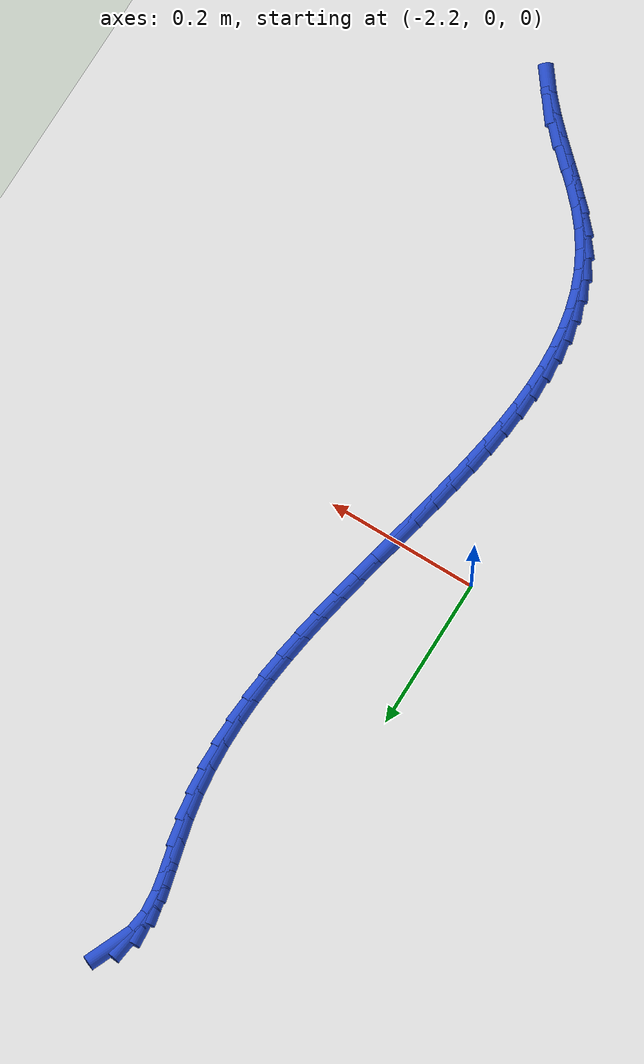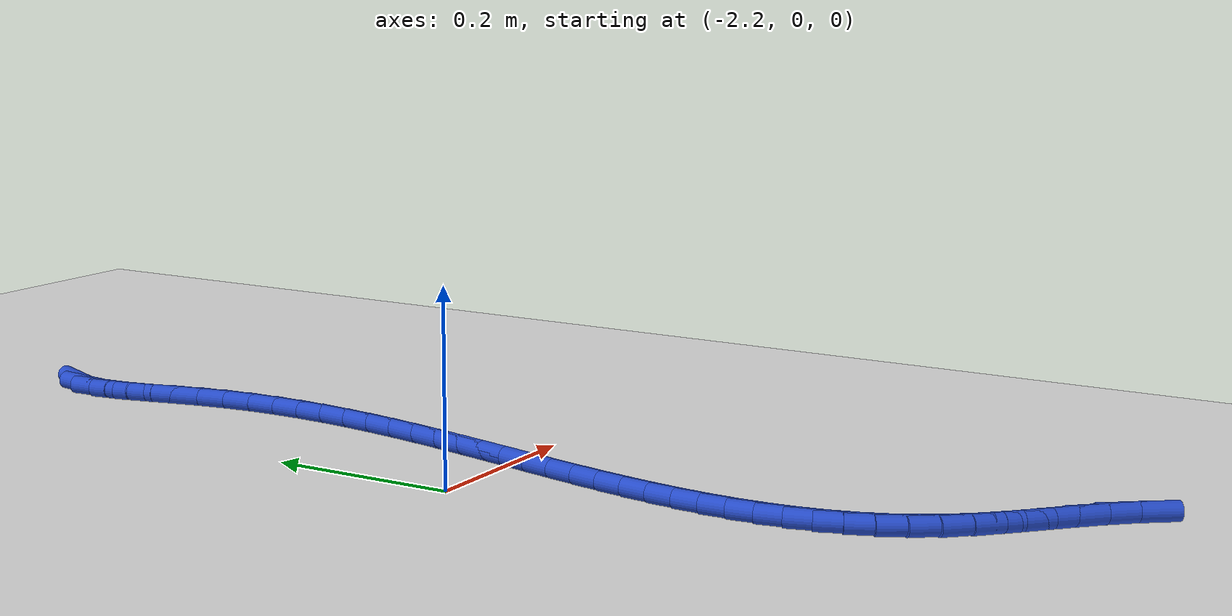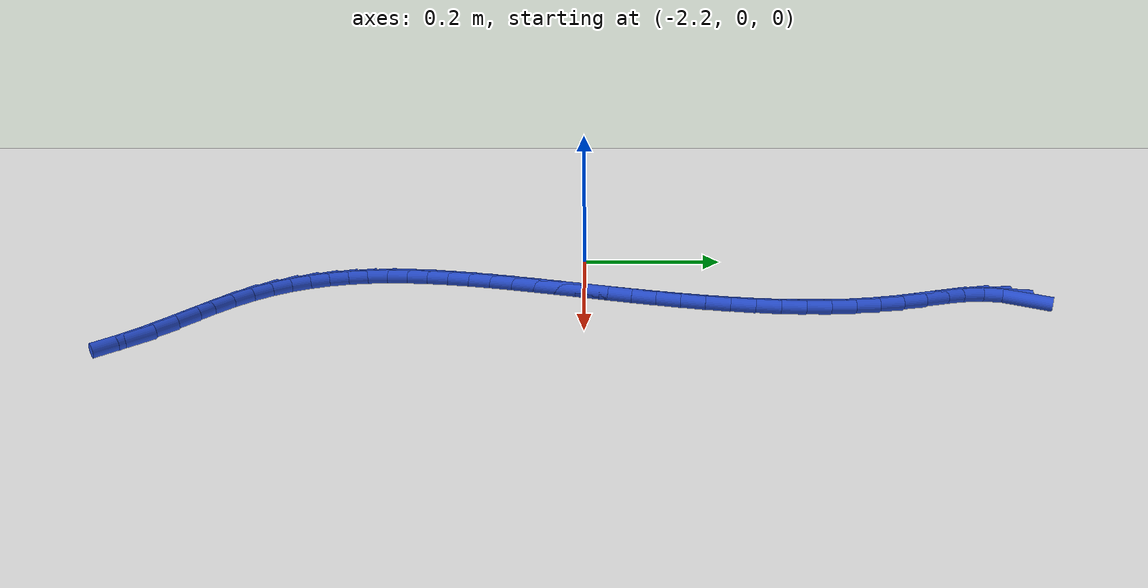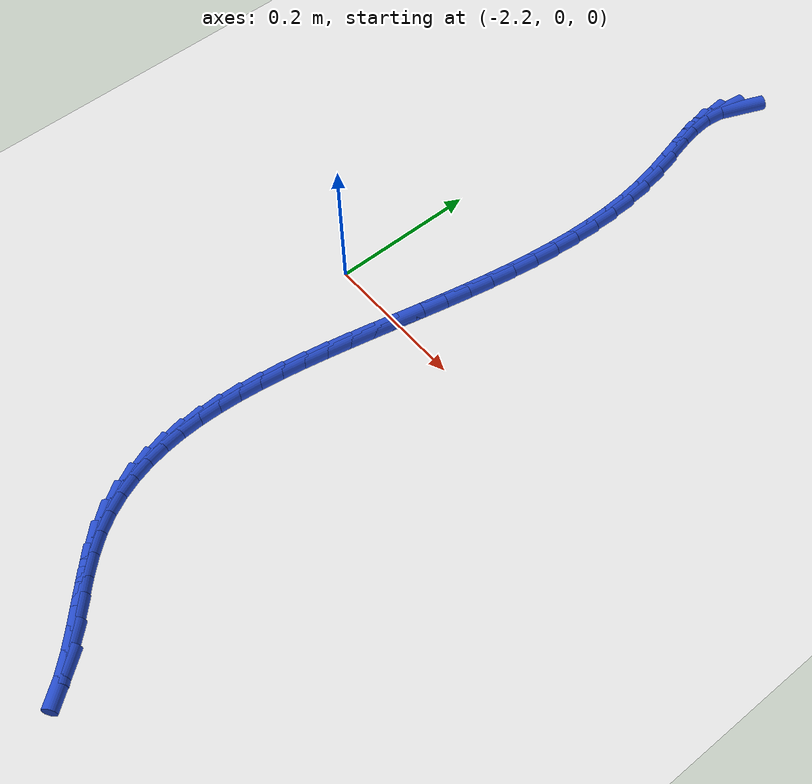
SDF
<sdf version="1.6">
 <world name="default">
  <model name="ground_plane">
   <static>1</static>
   <link name="link">
    <collision name="collision">
     <geometry><plane><normal>0 0 1</normal><size>100 100</size></plane></geometry>
     <surface><friction><ode><mu>100</mu><mu2>50</mu2></ode></friction></surface>
    </collision>
    <visual name="visual">
     <cast_shadows>0</cast_shadows>
     <geometry><plane><normal>0 0 1</normal><size>100 100</size></plane></geometry>
     <material>
      <script><uri>file://media/materials/scripts/gazebo.material</uri><name>Gazebo/WhiteGlow</name></script>
     </material>
    </visual>
   </link>
  </model>
  <model name="line">
   <link name="link_105">
    <pose>-2.0668392714114527 0.6042175349338211 0.01 0 1.57 1.1620151764280284</pose>
    <collision name="collision">
     <geometry><cylinder><radius>0.01</radius><length>0.08</length></cylinder></geometry>
    </collision>
    <visual name="visual">
     <material>
      <script><name>Gazebo/Blue</name><uri>file://media/materials/scripts/gazebo.material</uri></script>
     </material>
     <geometry><cylinder><radius>0.01</radius><length>0.08</length></cylinder></geometry>
    </visual>
   </link>
   <link name="link_106">
    <pose>-2.077239951345704 0.5802076293709276 0.01 0 1.57 1.4441414119854377</pose>
    <collision name="collision">
     <geometry><cylinder><radius>0.01</radius><length>0.08</length></cylinder></geometry>
    </collision>
    <visual name="visual">
     <material>
      <script><name>Gazebo/Blue</name><uri>file://media/materials/scripts/gazebo.material</uri></script>
     </material>
     <geometry><cylinder><radius>0.01</radius><length>0.08</length></cylinder></geometry>
    </visual>
   </link>
   <link name="link_107">
    <pose>-2.080628480789514 0.5535968101438071 0.01 0 1.57 -1.491434207393635</pose>
    <collision name="collision">
     <geometry><cylinder><radius>0.01</radius><length>0.08</length></cylinder></geometry>
    </collision>
    <visual name="visual">
     <material>
      <script><name>Gazebo/Blue</name><uri>file://media/materials/scripts/gazebo.material</uri></script>
     </material>
     <geometry><cylinder><radius>0.01</radius><length>0.08</length></cylinder></geometry>
    </visual>
   </link>
   <link name="link_108">
    <pose>-2.0783295768554817 0.5246903810721223 0.01 0 1.57 -1.376431582109848</pose>
    <collision name="collision">
     <geometry><cylinder><radius>0.01</radius><length>0.08</length></cylinder></geometry>
    </collision>
    <visual name="visual">
     <material>
      <script><name>Gazebo/Blue</name><uri>file://media/materials/scripts/gazebo.material</uri></script>
     </material>
     <geometry><cylinder><radius>0.01</radius><length>0.08</length></cylinder></geometry>
    </visual>
   </link>
   <link name="link_109">
    <pose>-2.0722865321586013 0.49399162954735965 0.01 0 1.57 -1.3303281371025912</pose>
    <collision name="collision">
     <geometry><cylinder><radius>0.01</radius><length>0.08</length></cylinder></geometry>
    </collision>
    <visual name="visual">
     <material>
      <script><name>Gazebo/Blue</name><uri>file://media/materials/scripts/gazebo.material</uri></script>
     </material>
     <geometry><cylinder><radius>0.01</radius><length>0.08</length></cylinder></geometry>
    </visual>
   </link>
   <link name="link_110">
    <pose>-2.0644427175918456 0.4620038680149462 0.01 0 1.57 -1.3400002510667648</pose>
    <collision name="collision">
     <geometry><cylinder><radius>0.01</radius><length>0.08</length></cylinder></geometry>
    </collision>
    <visual name="visual">
     <material>
      <script><name>Gazebo/Blue</name><uri>file://media/materials/scripts/gazebo.material</uri></script>
     </material>
     <geometry><cylinder><radius>0.01</radius><length>0.08</length></cylinder></geometry>
    </visual>
   </link>
   <link name="link_111">
    <pose>-2.0567415040481856 0.4292304089203086 0.01 0 1.57 -1.3951224198451924</pose>
    <collision name="collision">
     <geometry><cylinder><radius>0.01</radius><length>0.08</length></cylinder></geometry>
    </collision>
    <visual name="visual">
     <material>
      <script><name>Gazebo/Blue</name><uri>file://media/materials/scripts/gazebo.material</uri></script>
     </material>
     <geometry><cylinder><radius>0.01</radius><length>0.08</length></cylinder></geometry>
    </visual>
   </link>
   <link name="link_112">
    <pose>-2.050863826719448 0.39611741925838095 0.01 0 1.57 -1.4580711752834097</pose>
    <collision name="collision">
     <geometry><cylinder><radius>0.01</radius><length>0.08</length></cylinder></geometry>
    </collision>
    <visual name="visual">
     <material>
      <script><name>Gazebo/Blue</name><uri>file://media/materials/scripts/gazebo.material</uri></script>
     </material>
     <geometry><cylinder><radius>0.01</radius><length>0.08</length></cylinder></geometry>
    </visual>
   </link>
   <link name="link_113">
    <pose>-2.047092885895846 0.3628067088414679 0.01 0 1.57 -1.5157392926899138</pose>
    <collision name="collision">
     <geometry><cylinder><radius>0.01</radius><length>0.08</length></cylinder></geometry>
    </collision>
    <visual name="visual">
     <material>
      <script><name>Gazebo/Blue</name><uri>file://media/materials/scripts/gazebo.material</uri></script>
     </material>
     <geometry><cylinder><radius>0.01</radius><length>0.08</length></cylinder></geometry>
    </visual>
   </link>
   <link name="link_114">
    <pose>-2.0452483980292073 0.32933916374083955 0.01 0 1.57 -1.5678597372793182</pose>
    <collision name="collision">
     <geometry><cylinder><radius>0.01</radius><length>0.08</length></cylinder></geometry>
    </collision>
    <visual name="visual">
     <material>
      <script><name>Gazebo/Blue</name><uri>file://media/materials/scripts/gazebo.material</uri></script>
     </material>
     <geometry><cylinder><radius>0.01</radius><length>0.08</length></cylinder></geometry>
    </visual>
   </link>
   <link name="link_115">
    <pose>-2.0451497766164612 0.29575560405924867 0.01 0 1.57 1.5272495179312793</pose>
    <collision name="collision">
     <geometry><cylinder><radius>0.01</radius><length>0.08</length></cylinder></geometry>
    </collision>
    <visual name="visual">
     <material>
      <script><name>Gazebo/Blue</name><uri>file://media/materials/scripts/gazebo.material</uri></script>
     </material>
     <geometry><cylinder><radius>0.01</radius><length>0.08</length></cylinder></geometry>
    </visual>
   </link>
   <link name="link_116">
    <pose>-2.0466164351545406 0.26209684989944826 0.01 0 1.57 1.4863703823113563</pose>
    <collision name="collision">
     <geometry><cylinder><radius>0.01</radius><length>0.08</length></cylinder></geometry>
    </collision>
    <visual name="visual">
     <material>
      <script><name>Gazebo/Blue</name><uri>file://media/materials/scripts/gazebo.material</uri></script>
     </material>
     <geometry><cylinder><radius>0.01</radius><length>0.08</length></cylinder></geometry>
    </visual>
   </link>
   <link name="link_117">
    <pose>-2.049467787140376 0.2284037213641916 0.01 0 1.57 1.4509853194891917</pose>
    <collision name="collision">
     <geometry><cylinder><radius>0.01</radius><length>0.08</length></cylinder></geometry>
    </collision>
    <visual name="visual">
     <material>
      <script><name>Gazebo/Blue</name><uri>file://media/materials/scripts/gazebo.material</uri></script>
     </material>
     <geometry><cylinder><radius>0.01</radius><length>0.08</length></cylinder></geometry>
    </visual>
   </link>
   <link name="link_118">
    <pose>-2.053523246070897 0.1947170385562312 0.01 0 1.57 1.4209451698710869</pose>
    <collision name="collision">
     <geometry><cylinder><radius>0.01</radius><length>0.08</length></cylinder></geometry>
    </collision>
    <visual name="visual">
     <material>
      <script><name>Gazebo/Blue</name><uri>file://media/materials/scripts/gazebo.material</uri></script>
     </material>
     <geometry><cylinder><radius>0.01</radius><length>0.08</length></cylinder></geometry>
    </visual>
   </link>
   <link name="link_119">
    <pose>-2.0586022254430367 0.1610776215783204 0.01 0 1.57 1.3960926162455023</pose>
    <collision name="collision">
     <geometry><cylinder><radius>0.01</radius><length>0.08</length></cylinder></geometry>
    </collision>
    <visual name="visual">
     <material>
      <script><name>Gazebo/Blue</name><uri>file://media/materials/scripts/gazebo.material</uri></script>
     </material>
     <geometry><cylinder><radius>0.01</radius><length>0.08</length></cylinder></geometry>
    </visual>
   </link>
   <link name="link_120">
    <pose>-2.0645241387537254 0.1275262905332126 0.01 0 1.57 1.3762858004249723</pose>
    <collision name="collision">
     <geometry><cylinder><radius>0.01</radius><length>0.08</length></cylinder></geometry>
    </collision>
    <visual name="visual">
     <material>
      <script><name>Gazebo/Blue</name><uri>file://media/materials/scripts/gazebo.material</uri></script>
     </material>
     <geometry><cylinder><radius>0.01</radius><length>0.08</length></cylinder></geometry>
    </visual>
   </link>
   <link name="link_121">
    <pose>-2.071108399499894 0.0941038655236598 0.01 0 1.57 1.3614160219002454</pose>
    <collision name="collision">
     <geometry><cylinder><radius>0.01</radius><length>0.08</length></cylinder></geometry>
    </collision>
    <visual name="visual">
     <material>
      <script><name>Gazebo/Blue</name><uri>file://media/materials/scripts/gazebo.material</uri></script>
     </material>
     <geometry><cylinder><radius>0.01</radius><length>0.08</length></cylinder></geometry>
    </visual>
   </link>
   <link name="link_122">
    <pose>-2.0781744211784736 0.06085116665241549 0.01 0 1.57 1.3514210369580615</pose>
    <collision name="collision">
     <geometry><cylinder><radius>0.01</radius><length>0.08</length></cylinder></geometry>
    </collision>
    <visual name="visual">
     <material>
      <script><name>Gazebo/Blue</name><uri>file://media/materials/scripts/gazebo.material</uri></script>
     </material>
     <geometry><cylinder><radius>0.01</radius><length>0.08</length></cylinder></geometry>
    </visual>
   </link>
   <link name="link_123">
    <pose>-2.085541617286396 0.027809014022232653 0.01 0 1.57 1.346295371479225</pose>
    <collision name="collision">
     <geometry><cylinder><radius>0.01</radius><length>0.08</length></cylinder></geometry>
    </collision>
    <visual name="visual">
     <material>
      <script><name>Gazebo/Blue</name><uri>file://media/materials/scripts/gazebo.material</uri></script>
     </material>
     <geometry><cylinder><radius>0.01</radius><length>0.08</length></cylinder></geometry>
    </visual>
   </link>
   <link name="link_124">
    <pose>-2.0930294013205906 -0.004981772264135723 0.01 0 1.57 1.3460987836401086</pose>
    <collision name="collision">
     <geometry><cylinder><radius>0.01</radius><length>0.08</length></cylinder></geometry>
    </collision>
    <visual name="visual">
     <material>
      <script><name>Gazebo/Blue</name><uri>file://media/materials/scripts/gazebo.material</uri></script>
     </material>
     <geometry><cylinder><radius>0.01</radius><length>0.08</length></cylinder></geometry>
    </visual>
   </link>
   <link name="link_125">
    <pose>-2.10045718677799 -0.03748037210393661 0.01 0 1.57 1.3509636504506477</pose>
    <collision name="collision">
     <geometry><cylinder><radius>0.01</radius><length>0.08</length></cylinder></geometry>
    </collision>
    <visual name="visual">
     <material>
      <script><name>Gazebo/Blue</name><uri>file://media/materials/scripts/gazebo.material</uri></script>
     </material>
     <geometry><cylinder><radius>0.01</radius><length>0.08</length></cylinder></geometry>
    </visual>
   </link>
   <link name="link_126">
    <pose>-2.1076443871555246 -0.06964596539441713 0.01 0 1.57 1.361101619261274</pose>
    <collision name="collision">
     <geometry><cylinder><radius>0.01</radius><length>0.08</length></cylinder></geometry>
    </collision>
    <visual name="visual">
     <material>
      <script><name>Gazebo/Blue</name><uri>file://media/materials/scripts/gazebo.material</uri></script>
     </material>
     <geometry><cylinder><radius>0.01</radius><length>0.08</length></cylinder></geometry>
    </visual>
   </link>
   <link name="link_127">
    <pose>-2.1144104159501262 -0.10143773203282416 0.01 0 1.57 1.3768093203392178</pose>
    <collision name="collision">
     <geometry><cylinder><radius>0.01</radius><length>0.08</length></cylinder></geometry>
    </collision>
    <visual name="visual">
     <material>
      <script><name>Gazebo/Blue</name><uri>file://media/materials/scripts/gazebo.material</uri></script>
     </material>
     <geometry><cylinder><radius>0.01</radius><length>0.08</length></cylinder></geometry>
    </visual>
   </link>
   <link name="link_128">
    <pose>-2.120574686658725 -0.13281485191640477 0.01 0 1.57 1.3984721900187034</pose>
    <collision name="collision">
     <geometry><cylinder><radius>0.01</radius><length>0.08</length></cylinder></geometry>
    </collision>
    <visual name="visual">
     <material>
      <script><name>Gazebo/Blue</name><uri>file://media/materials/scripts/gazebo.material</uri></script>
     </material>
     <geometry><cylinder><radius>0.01</radius><length>0.08</length></cylinder></geometry>
    </visual>
   </link>
   <link name="link_129">
    <pose>-2.1259566127782525 -0.16373650494240594 0.01 0 1.57 1.4265643768755774</pose>
    <collision name="collision">
     <geometry><cylinder><radius>0.01</radius><length>0.08</length></cylinder></geometry>
    </collision>
    <visual name="visual">
     <material>
      <script><name>Gazebo/Blue</name><uri>file://media/materials/scripts/gazebo.material</uri></script>
     </material>
     <geometry><cylinder><radius>0.01</radius><length>0.08</length></cylinder></geometry>
    </visual>
   </link>
   <link name="link_130">
    <pose>-2.1303756078056395 -0.19416187100807472 0.01 0 1.57 1.4616411517264618</pose>
    <collision name="collision">
     <geometry><cylinder><radius>0.01</radius><length>0.08</length></cylinder></geometry>
    </collision>
    <visual name="visual">
     <material>
      <script><name>Gazebo/Blue</name><uri>file://media/materials/scripts/gazebo.material</uri></script>
     </material>
     <geometry><cylinder><radius>0.01</radius><length>0.08</length></cylinder></geometry>
    </visual>
   </link>
   <link name="link_131">
    <pose>-2.133651085237817 -0.2240501300106581 0.01 0 1.57 1.5043181341620617</pose>
    <collision name="collision">
     <geometry><cylinder><radius>0.01</radius><length>0.08</length></cylinder></geometry>
    </collision>
    <visual name="visual">
     <material>
      <script><name>Gazebo/Blue</name><uri>file://media/materials/scripts/gazebo.material</uri></script>
     </material>
     <geometry><cylinder><radius>0.01</radius><length>0.08</length></cylinder></geometry>
    </visual>
   </link>
   <link name="link_132">
    <pose>-2.135602458571717 -0.2533604618474031 0.01 0 1.57 1.5552291611551872</pose>
    <collision name="collision">
     <geometry><cylinder><radius>0.01</radius><length>0.08</length></cylinder></geometry>
    </collision>
    <visual name="visual">
     <material>
      <script><name>Gazebo/Blue</name><uri>file://media/materials/scripts/gazebo.material</uri></script>
     </material>
     <geometry><cylinder><radius>0.01</radius><length>0.08</length></cylinder></geometry>
    </visual>
   </link>
   <link name="link_133">
    <pose>-2.13604914130427 -0.2820520464155566 0.01 0 1.57 -1.526640058459199</pose>
    <collision name="collision">
     <geometry><cylinder><radius>0.01</radius><length>0.08</length></cylinder></geometry>
    </collision>
    <visual name="visual">
     <material>
      <script><name>Gazebo/Blue</name><uri>file://media/materials/scripts/gazebo.material</uri></script>
     </material>
     <geometry><cylinder><radius>0.01</radius><length>0.08</length></cylinder></geometry>
    </visual>
   </link>
   <link name="link_134">
    <pose>-2.1348105469324063 -0.3100840636123658 0.01 0 1.57 -1.4576962415263506</pose>
    <collision name="collision">
     <geometry><cylinder><radius>0.01</radius><length>0.08</length></cylinder></geometry>
    </collision>
    <visual name="visual">
     <material>
      <script><name>Gazebo/Blue</name><uri>file://media/materials/scripts/gazebo.material</uri></script>
     </material>
     <geometry><cylinder><radius>0.01</radius><length>0.08</length></cylinder></geometry>
    </visual>
   </link>
   <link name="link_135">
    <pose>-2.131706088953058 -0.3374156933350777 0.01 0 1.57 -1.3794532884359687</pose>
    <collision name="collision">
     <geometry><cylinder><radius>0.01</radius><length>0.08</length></cylinder></geometry>
    </collision>
    <visual name="visual">
     <material>
      <script><name>Gazebo/Blue</name><uri>file://media/materials/scripts/gazebo.material</uri></script>
     </material>
     <geometry><cylinder><radius>0.01</radius><length>0.08</length></cylinder></geometry>
    </visual>
   </link>
   <link name="link_136">
    <pose>-2.1265551808631558 -0.3640061154809392 0.01 0 1.57 -1.2923491660960689</pose>
    <collision name="collision">
     <geometry><cylinder><radius>0.01</radius><length>0.08</length></cylinder></geometry>
    </collision>
    <visual name="visual">
     <material>
      <script><name>Gazebo/Blue</name><uri>file://media/materials/scripts/gazebo.material</uri></script>
     </material>
     <geometry><cylinder><radius>0.01</radius><length>0.08</length></cylinder></geometry>
    </visual>
   </link>
   <link name="link_137">
    <pose>-2.1191772361596306 -0.38981450994719724 0.01 0 1.57 -1.197509633457981</pose>
    <collision name="collision">
     <geometry><cylinder><radius>0.01</radius><length>0.08</length></cylinder></geometry>
    </collision>
    <visual name="visual">
     <material>
      <script><name>Gazebo/Blue</name><uri>file://media/materials/scripts/gazebo.material</uri></script>
     </material>
     <geometry><cylinder><radius>0.01</radius><length>0.08</length></cylinder></geometry>
    </visual>
   </link>
   <link name="link_138">
    <pose>-2.1093916683394145 -0.4148000566310991 0.01 0 1.57 -1.0968273831692148</pose>
    <collision name="collision">
     <geometry><cylinder><radius>0.01</radius><length>0.08</length></cylinder></geometry>
    </collision>
    <visual name="visual">
     <material>
      <script><name>Gazebo/Blue</name><uri>file://media/materials/scripts/gazebo.material</uri></script>
     </material>
     <geometry><cylinder><radius>0.01</radius><length>0.08</length></cylinder></geometry>
    </visual>
   </link>
   <link name="link_139">
    <pose>-2.097017890899437 -0.43892193542989155 0.01 0 1.57 -0.992870307778743</pose>
    <collision name="collision">
     <geometry><cylinder><radius>0.01</radius><length>0.08</length></cylinder></geometry>
    </collision>
    <visual name="visual">
     <material>
      <script><name>Gazebo/Blue</name><uri>file://media/materials/scripts/gazebo.material</uri></script>
     </material>
     <geometry><cylinder><radius>0.01</radius><length>0.08</length></cylinder></geometry>
    </visual>
   </link>
   <link name="link_140">
    <pose>-2.08187531733663 -0.46213932624082166 0.01 0 1.57 -0.8895059280580513</pose>
    <collision name="collision">
     <geometry><cylinder><radius>0.01</radius><length>0.08</length></cylinder></geometry>
    </collision>
    <visual name="visual">
     <material>
      <script><name>Gazebo/Blue</name><uri>file://media/materials/scripts/gazebo.material</uri></script>
     </material>
     <geometry><cylinder><radius>0.01</radius><length>0.08</length></cylinder></geometry>
    </visual>
   </link>
   <link name="link_141">
    <pose>-2.063808699684657 -0.48442184449838693 0.01 0 1.57 -0.808232897217704</pose>
    <collision name="collision">
     <geometry><cylinder><radius>0.01</radius><length>0.08</length></cylinder></geometry>
    </collision>
    <visual name="visual">
     <material>
      <script><name>Gazebo/Blue</name><uri>file://media/materials/scripts/gazebo.material</uri></script>
     </material>
     <geometry><cylinder><radius>0.01</radius><length>0.08</length></cylinder></geometry>
    </visual>
   </link>
   <link name="link_142">
    <pose>-2.0432229984246244 -0.5059698244107438 0.01 0 1.57 -0.7643732009938887</pose>
    <collision name="collision">
     <geometry><cylinder><radius>0.01</radius><length>0.08</length></cylinder></geometry>
    </collision>
    <visual name="visual">
     <material>
      <script><name>Gazebo/Blue</name><uri>file://media/materials/scripts/gazebo.material</uri></script>
     </material>
     <geometry><cylinder><radius>0.01</radius><length>0.08</length></cylinder></geometry>
    </visual>
   </link>
   <link name="link_143">
    <pose>-2.021071119094392 -0.5272092683495767 0.01 0 1.57 -0.7542141156745374</pose>
    <collision name="collision">
     <geometry><cylinder><radius>0.01</radius><length>0.08</length></cylinder></geometry>
    </collision>
    <visual name="visual">
     <material>
      <script><name>Gazebo/Blue</name><uri>file://media/materials/scripts/gazebo.material</uri></script>
     </material>
     <geometry><cylinder><radius>0.01</radius><length>0.08</length></cylinder></geometry>
    </visual>
   </link>
   <link name="link_144">
    <pose>-1.998328852713734 -0.5485756039466597 0.01 0 1.57 -0.7757292195511314</pose>
    <collision name="collision">
     <geometry><cylinder><radius>0.01</radius><length>0.08</length></cylinder></geometry>
    </collision>
    <visual name="visual">
     <material>
      <script><name>Gazebo/Blue</name><uri>file://media/materials/scripts/gazebo.material</uri></script>
     </material>
     <geometry><cylinder><radius>0.01</radius><length>0.08</length></cylinder></geometry>
    </visual>
   </link>
   <link name="link_145">
    <pose>-1.9759719903024247 -0.5705042588337662 0.01 0 1.57 -0.8293280660684522</pose>
    <collision name="collision">
     <geometry><cylinder><radius>0.01</radius><length>0.08</length></cylinder></geometry>
    </collision>
    <visual name="visual">
     <material>
      <script><name>Gazebo/Blue</name><uri>file://media/materials/scripts/gazebo.material</uri></script>
     </material>
     <geometry><cylinder><radius>0.01</radius><length>0.08</length></cylinder></geometry>
    </visual>
   </link>
   <link name="link_146">
    <pose>-1.9549763228802364 -0.5934306606426718 0.01 0 1.57 -0.917153121010824</pose>
    <collision name="collision">
     <geometry><cylinder><radius>0.01</radius><length>0.08</length></cylinder></geometry>
    </collision>
    <visual name="visual">
     <material>
      <script><name>Gazebo/Blue</name><uri>file://media/materials/scripts/gazebo.material</uri></script>
     </material>
     <geometry><cylinder><radius>0.01</radius><length>0.08</length></cylinder></geometry>
    </visual>
   </link>
  </model>
 </world>
</sdf>
